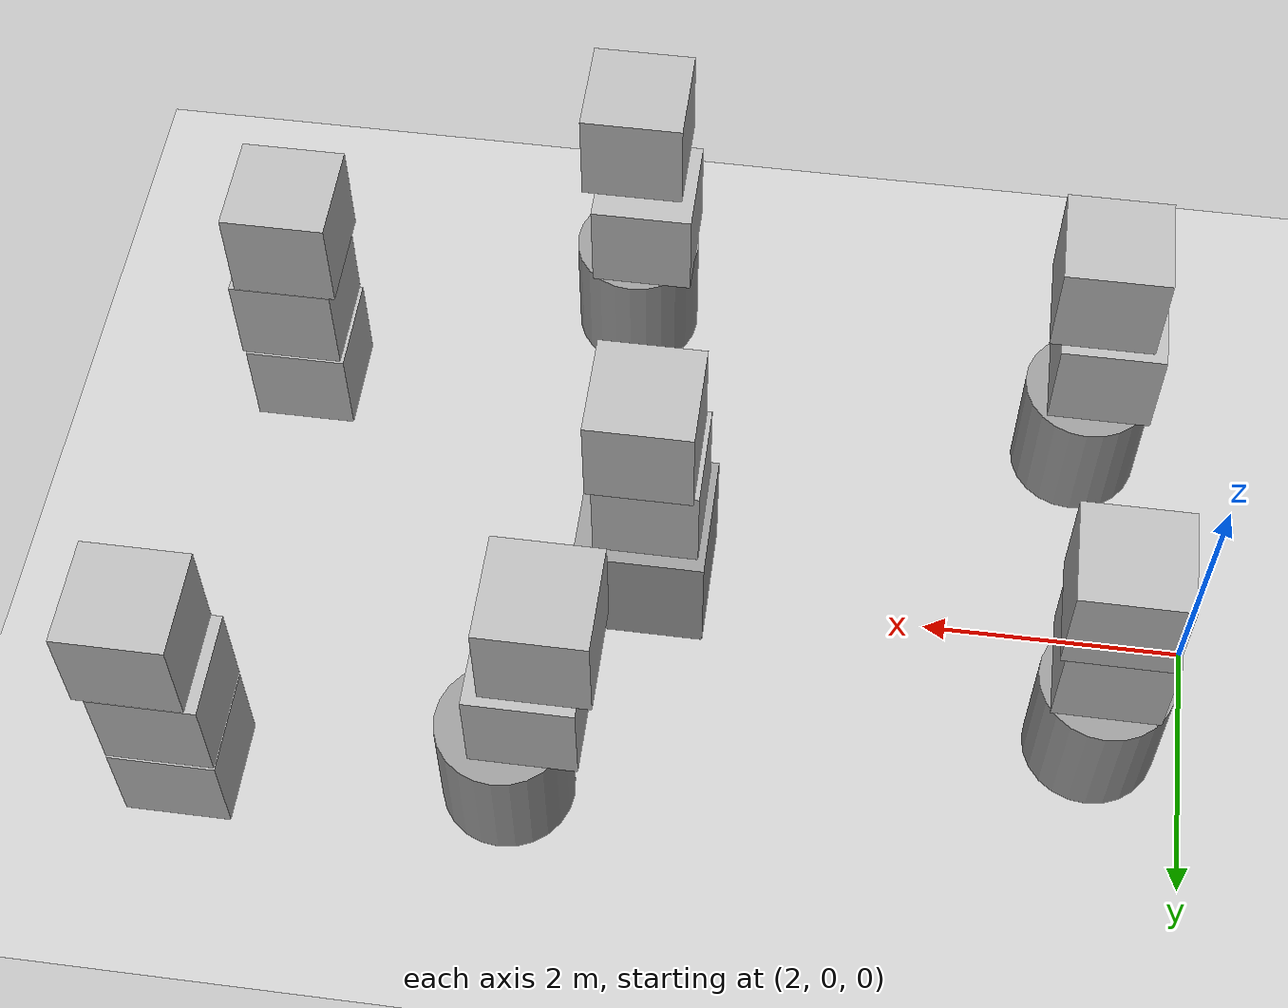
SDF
<sdf version="1.7">
 <world name="default">
  <light name="sun" type="directional">
   <pose>0 0 10 0 -0 0</pose>
   <diffuse>0.8 0.8 0.8 1</diffuse>
   <specular>0.2 0.2 0.2 1</specular>
   <attenuation>
    <range>1000</range>
    <constant>0.9</constant>
    <linear>0.01</linear>
    <quadratic>0.001</quadratic>
   </attenuation>
   <direction>-0.5 0.1 -0.9</direction>
   <spot><inner_angle>0</inner_angle><outer_angle>0</outer_angle><falloff>0</falloff></spot>
  </light>
  <model name="ground_plane">
   <static>1</static>
   <link name="link">
    <collision name="collision">
     <geometry><plane><normal>0 0 1</normal><size>100 100</size></plane></geometry>
     <surface><friction><ode><mu>100</mu><mu2>50</mu2></ode></friction></surface>
    </collision>
    <visual name="visual">
     <cast_shadows>0</cast_shadows>
     <geometry><plane><normal>0 0 1</normal><size>100 100</size></plane></geometry>
     <material>
      <script><uri>file://media/materials/scripts/gazebo.material</uri><name>Gazebo/Grey</name></script>
     </material>
    </visual>
   </link>
  </model>
  <gravity>0 0 -9.8</gravity>
  <magnetic_field>6e-06 2.3e-05 -4.2e-05</magnetic_field>
  <atmosphere type="adiabatic"/>
  <physics type="ode">
   <max_step_size>0.001</max_step_size>
   <real_time_factor>1</real_time_factor>
   <real_time_update_rate>1000</real_time_update_rate>
  </physics>
  <scene><ambient>0.4 0.4 0.4 1</ambient><background>0.7 0.7 0.7 1</background><shadows>1</shadows></scene>
  <spherical_coordinates>
   <surface_model>EARTH_WGS84</surface_model>
   <latitude_deg>0</latitude_deg>
   <longitude_deg>0</longitude_deg>
   <elevation>0</elevation>
   <heading_deg>0</heading_deg>
  </spherical_coordinates>
  <model name="number1">
   <pose>2.69446 0.800751 1.40347 0 -0 0</pose>
   <static>1</static>
   <link name="link">
    <visual name="visual">
     <geometry><mesh><uri>model://number1/meshes/number.dae</uri></mesh></geometry>
     <material>
      <script>
       <uri>model://number1/materials/scripts</uri>
       <uri>model://number1/materials/textures</uri>
       <name>Number/One</name>
      </script>
     </material>
    </visual>
   </link>
  </model>
  <model name="number2">
   <pose>2.82062 -1.84222 1.40891 0 -0 0</pose>
   <static>1</static>
   <link name="link">
    <visual name="visual">
     <geometry><mesh><uri>model://number1/meshes/number.dae</uri></mesh></geometry>
     <material>
      <script>
       <uri>model://number2/materials/scripts</uri>
       <uri>model://number2/materials/textures</uri>
       <name>Number/Two</name>
      </script>
     </material>
    </visual>
   </link>
  </model>
  <model name="number3">
   <pose>6.1726 -0.155941 1.40684 0 -0 0</pose>
   <static>1</static>
   <link name="link">
    <visual name="visual">
     <geometry><mesh><uri>model://number1/meshes/number.dae</uri></mesh></geometry>
     <material>
      <script>
       <uri>model://number3/materials/scripts</uri>
       <uri>model://number3/materials/textures</uri>
       <name>Number/Three</name>
      </script>
     </material>
    </visual>
   </link>
  </model>
  <model name="number4">
   <pose>9.4171 1.94808 0.4 0 -0 0</pose>
   <static>1</static>
   <link name="link">
    <visual name="visual">
     <geometry><mesh><uri>model://number1/meshes/number.dae</uri></mesh></geometry>
     <material>
      <script>
       <uri>model://number4/materials/scripts</uri>
       <uri>model://number4/materials/textures</uri>
       <name>Number/Four</name>
      </script>
     </material>
    </visual>
   </link>
  </model>
  <model name="number5">
   <pose>9.25156 -1.76529 0.4 0 -0 0</pose>
   <static>1</static>
   <link name="link">
    <visual name="visual">
     <geometry><mesh><uri>model://number1/meshes/number.dae</uri></mesh></geometry>
     <material>
      <script>
       <uri>model://number5/materials/scripts</uri>
       <uri>model://number5/materials/textures</uri>
       <name>Number/Five</name>
      </script>
     </material>
    </visual>
   </link>
  </model>
  <model name="unit_cylinder">
   <pose>2.6908 0.876376 0.499994 -3e-06 -1e-06 -0</pose>
   <link name="link">
    <inertial>
     <mass>1</mass>
     <inertia><ixx>0.145833</ixx><ixy>0</ixy><ixz>0</ixz><iyy>0.145833</iyy><iyz>0</iyz><izz>0.125</izz></inertia>
    </inertial>
    <collision name="collision">
     <geometry><cylinder><radius>0.5</radius><length>1</length></cylinder></geometry>
    </collision>
    <visual name="visual">
     <geometry><cylinder><radius>0.5</radius><length>1</length></cylinder></geometry>
     <material>
      <script><name>Gazebo/Grey</name><uri>file://media/materials/scripts/gazebo.material</uri></script>
     </material>
    </visual>
   </link>
  </model>
  <model name="unit_cylinder_0">
   <pose>2.89945 -1.78178 0.499994 -2e-06 -0 -0</pose>
   <link name="link">
    <inertial>
     <mass>1</mass>
     <inertia><ixx>0.145833</ixx><ixy>0</ixy><ixz>0</ixz><iyy>0.145833</iyy><iyz>0</iyz><izz>0.125</izz></inertia>
    </inertial>
    <collision name="collision">
     <geometry><cylinder><radius>0.5</radius><length>1</length></cylinder></geometry>
    </collision>
    <visual name="visual">
     <geometry><cylinder><radius>0.5</radius><length>1</length></cylinder></geometry>
     <material>
      <script><name>Gazebo/Grey</name><uri>file://media/materials/scripts/gazebo.material</uri></script>
     </material>
    </visual>
   </link>
  </model>
  <model name="unit_box">
   <pose>6.2151 -0.156864 0.499995 -1e-05 -0 -0</pose>
   <link name="link">
    <inertial>
     <mass>1</mass>
     <inertia>
      <ixx>0.166667</ixx>
      <ixy>0</ixy>
      <ixz>0</ixz>
      <iyy>0.166667</iyy>
      <iyz>0</iyz>
      <izz>0.166667</izz>
     </inertia>
    </inertial>
    <collision name="collision"><geometry><box><size>1 1 1</size></box></geometry></collision>
    <visual name="visual">
     <geometry><box><size>1 1 1</size></box></geometry>
     <material>
      <script><name>Gazebo/Grey</name><uri>file://media/materials/scripts/gazebo.material</uri></script>
     </material>
    </visual>
   </link>
  </model>
  <model name="number4_0">
   <pose>9.42247 1.93606 1.20984 0 -0 0</pose>
   <static>1</static>
   <link name="link">
    <visual name="visual">
     <geometry><mesh><uri>model://number1/meshes/number.dae</uri></mesh></geometry>
     <material>
      <script>
       <uri>model://number4/materials/scripts</uri>
       <uri>model://number4/materials/textures</uri>
       <name>Number/Four</name>
      </script>
     </material>
    </visual>
   </link>
  </model>
  <model name="number5_0">
   <pose>9.27907 -1.78202 1.20488 0 -0 0</pose>
   <static>1</static>
   <link name="link">
    <visual name="visual">
     <geometry><mesh><uri>model://number1/meshes/number.dae</uri></mesh></geometry>
     <material>
      <script>
       <uri>model://number5/materials/scripts</uri>
       <uri>model://number5/materials/textures</uri>
       <name>Number/Five</name>
      </script>
     </material>
    </visual>
   </link>
  </model>
  <model name="number9">
   <pose>6.65256 -2.95062 2.2153 0 -0 0</pose>
   <static>1</static>
   <link name="link">
    <visual name="visual">
     <geometry><mesh><uri>model://number1/meshes/number.dae</uri></mesh></geometry>
     <material>
      <script>
       <uri>model://number9/materials/scripts</uri>
       <uri>model://number9/materials/textures</uri>
       <name>Number/Nine</name>
      </script>
     </material>
    </visual>
   </link>
  </model>
  <model name="number8">
   <pose>6.80064 1.71747 1.40189 0 -0 0</pose>
   <static>1</static>
   <link name="link">
    <visual name="visual">
     <geometry><mesh><uri>model://number1/meshes/number.dae</uri></mesh></geometry>
     <material>
      <script>
       <uri>model://number8/materials/scripts</uri>
       <uri>model://number8/materials/textures</uri>
       <name>Number/Eight</name>
      </script>
     </material>
    </visual>
   </link>
  </model>
  <model name="unit_cylinder_1">
   <pose>6.9975 1.80146 0.499997 3e-06 2e-06 0</pose>
   <link name="link">
    <inertial>
     <mass>1</mass>
     <inertia><ixx>0.145833</ixx><ixy>0</ixy><ixz>0</ixz><iyy>0.145833</iyy><iyz>0</iyz><izz>0.125</izz></inertia>
    </inertial>
    <collision name="collision">
     <geometry><cylinder><radius>0.5</radius><length>1</length></cylinder></geometry>
    </collision>
    <visual name="visual">
     <geometry><cylinder><radius>0.5</radius><length>1</length></cylinder></geometry>
     <material>
      <script><name>Gazebo/Grey</name><uri>file://media/materials/scripts/gazebo.material</uri></script>
     </material>
    </visual>
   </link>
  </model>
  <model name="unit_cylinder_2">
   <pose>6.63623 -2.77141 0.499997 3e-06 2e-06 0</pose>
   <link name="link">
    <inertial>
     <mass>1</mass>
     <inertia><ixx>0.145833</ixx><ixy>0</ixy><ixz>0</ixz><iyy>0.145833</iyy><iyz>0</iyz><izz>0.125</izz></inertia>
    </inertial>
    <collision name="collision">
     <geometry><cylinder><radius>0.5</radius><length>1</length></cylinder></geometry>
    </collision>
    <visual name="visual">
     <geometry><cylinder><radius>0.5</radius><length>1</length></cylinder></geometry>
     <material>
      <script><name>Gazebo/Grey</name><uri>file://media/materials/scripts/gazebo.material</uri></script>
     </material>
    </visual>
   </link>
  </model>
  <model name="number1_clone">
   <pose>2.73669 0.832089 2.20396 0 -0 0</pose>
   <static>1</static>
   <link name="link">
    <visual name="visual">
     <geometry><mesh><uri>model://number1/meshes/number.dae</uri></mesh></geometry>
     <material>
      <script>
       <uri>model://number1/materials/scripts</uri>
       <uri>model://number1/materials/textures</uri>
       <name>Number/One</name>
      </script>
     </material>
    </visual>
   </link>
  </model>
  <model name="number2_0">
   <pose>2.91449 -1.92454 2.20828 0 -0 0</pose>
   <static>1</static>
   <link name="link">
    <visual name="visual">
     <geometry><mesh><uri>model://number1/meshes/number.dae</uri></mesh></geometry>
     <material>
      <script>
       <uri>model://number2/materials/scripts</uri>
       <uri>model://number2/materials/textures</uri>
       <name>Number/Two</name>
      </script>
     </material>
    </visual>
   </link>
  </model>
  <model name="number3_clone">
   <pose>6.21017 -0.103974 2.21104 0 -0 0</pose>
   <static>1</static>
   <link name="link">
    <visual name="visual">
     <geometry><mesh><uri>model://number1/meshes/number.dae</uri></mesh></geometry>
     <material>
      <script>
       <uri>model://number3/materials/scripts</uri>
       <uri>model://number3/materials/textures</uri>
       <name>Number/Three</name>
      </script>
     </material>
    </visual>
   </link>
  </model>
  <model name="number8_clone">
   <pose>6.69002 1.65499 2.22536 0 -0 0</pose>
   <static>1</static>
   <link name="link">
    <visual name="visual">
     <geometry><mesh><uri>model://number1/meshes/number.dae</uri></mesh></geometry>
     <material>
      <script>
       <uri>model://number8/materials/scripts</uri>
       <uri>model://number8/materials/textures</uri>
       <name>Number/Eight</name>
      </script>
     </material>
    </visual>
   </link>
  </model>
  <model name="number9_clone">
   <pose>6.55296 -2.74276 1.40627 0 -0 0</pose>
   <static>1</static>
   <link name="link">
    <visual name="visual">
     <geometry><mesh><uri>model://number1/meshes/number.dae</uri></mesh></geometry>
     <material>
      <script>
       <uri>model://number9/materials/scripts</uri>
       <uri>model://number9/materials/textures</uri>
       <name>Number/Nine</name>
      </script>
     </material>
    </visual>
   </link>
  </model>
  <model name="number4_0_clone">
   <pose>9.50725 1.93622 2.01959 0 -0 0</pose>
   <static>1</static>
   <link name="link">
    <visual name="visual">
     <geometry><mesh><uri>model://number1/meshes/number.dae</uri></mesh></geometry>
     <material>
      <script>
       <uri>model://number4/materials/scripts</uri>
       <uri>model://number4/materials/textures</uri>
       <name>Number/Four</name>
      </script>
     </material>
    </visual>
   </link>
  </model>
  <model name="number5_0_clone">
   <pose>9.23057 -1.78228 2.01149 0 -0 0</pose>
   <static>1</static>
   <link name="link">
    <visual name="visual">
     <geometry><mesh><uri>model://number1/meshes/number.dae</uri></mesh></geometry>
     <material>
      <script>
       <uri>model://number5/materials/scripts</uri>
       <uri>model://number5/materials/textures</uri>
       <name>Number/Five</name>
      </script>
     </material>
    </visual>
   </link>
  </model>
 </world>
</sdf>
